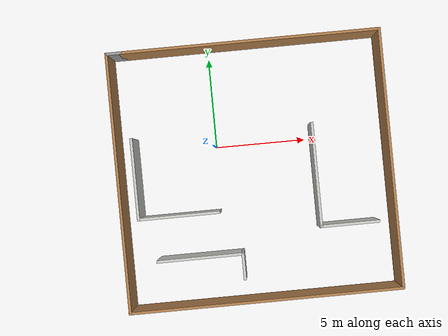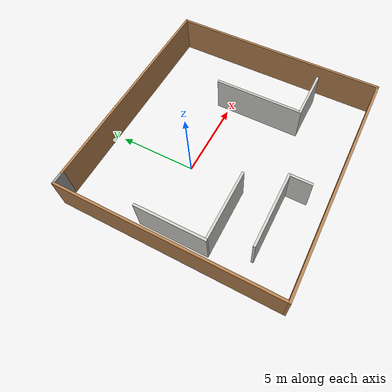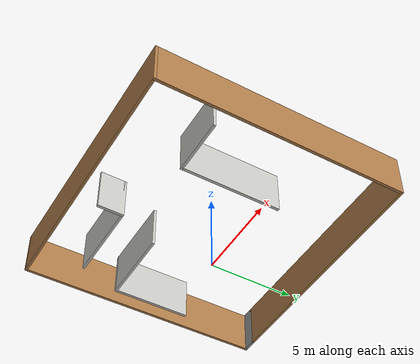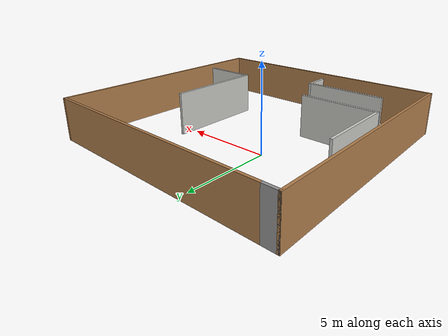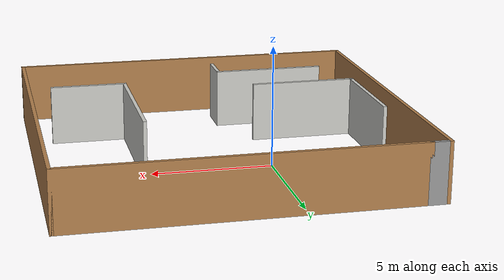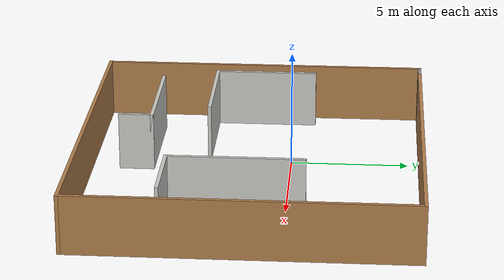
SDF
<?xml version='1.0'?>
<sdf version='1.7'>
  <model name='Maze_room'>
    <pose>2.02493 -1.51951 0 0 -0 0</pose>
    <link name='Wall_10'>
      <collision name='Wall_10_Collision'>
        <geometry>
          <box>
            <size>0.9 0.15 2.5</size>
          </box>
        </geometry>
        <pose>0 0 1.25 0 -0 0</pose>
      </collision>
      <visual name='Wall_10_Visual'>
        <pose>0 0 1.25 0 -0 0</pose>
        <geometry>
          <box>
            <size>0.9 0.15 2.5</size>
          </box>
        </geometry>
        <material>
          <script>
            <uri>file://media/materials/scripts/gazebo.material</uri>
            <name>Gazebo/Grey</name>
          </script>
          <ambient>1 1 1 1</ambient>
        </material>
        <meta>
          <layer>0</layer>
        </meta>
      </visual>
      <pose>-7.05 7.05 0 0 -0 0</pose>
    </link>
    <link name='Wall_12'>
      <collision name='Wall_12_Collision'>
        <geometry>
          <box>
            <size>4.5 0.15 2.5</size>
          </box>
        </geometry>
        <pose>0 0 1.25 0 -0 0</pose>
      </collision>
      <visual name='Wall_12_Visual'>
        <pose>0 0 1.25 0 -0 0</pose>
        <geometry>
          <box>
            <size>4.5 0.15 2.5</size>
          </box>
        </geometry>
        <material>
          <script>
            <uri>file://media/materials/scripts/gazebo.material</uri>
            <name>Gazebo/CeilingTiled</name>
          </script>
          <ambient>1 1 1 1</ambient>
        </material>
        <meta>
          <layer>0</layer>
        </meta>
      </visual>
      <pose>-6.51318 0.141698 0 0 -0 -1.5708</pose>
    </link>
    <link name='Wall_13'>
      <collision name='Wall_13_Collision'>
        <geometry>
          <box>
            <size>4.5 0.15 2.5</size>
          </box>
        </geometry>
        <pose>0 0 1.25 0 -0 0</pose>
      </collision>
      <visual name='Wall_13_Visual'>
        <pose>0 0 1.25 0 -0 0</pose>
        <geometry>
          <box>
            <size>4.5 0.15 2.5</size>
          </box>
        </geometry>
        <material>
          <script>
            <uri>file://media/materials/scripts/gazebo.material</uri>
            <name>Gazebo/CeilingTiled</name>
          </script>
          <ambient>1 1 1 1</ambient>
        </material>
        <meta>
          <layer>0</layer>
        </meta>
      </visual>
      <pose>-4.33818 -2.0333 0 0 -0 0</pose>
    </link>
    <link name='Wall_15'>
      <collision name='Wall_15_Collision'>
        <geometry>
          <box>
            <size>5.75 0.15 2.5</size>
          </box>
        </geometry>
        <pose>0 0 1.25 0 -0 0</pose>
      </collision>
      <visual name='Wall_15_Visual'>
        <pose>0 0 1.25 0 -0 0</pose>
        <geometry>
          <box>
            <size>5.75 0.15 2.5</size>
          </box>
        </geometry>
        <material>
          <script>
            <uri>file://media/materials/scripts/gazebo.material</uri>
            <name>Gazebo/CeilingTiled</name>
          </script>
          <ambient>1 1 1 1</ambient>
        </material>
        <meta>
          <layer>0</layer>
        </meta>
      </visual>
      <pose>3.31753 -0.523758 0 0 -0 -1.5708</pose>
    </link>
    <link name='Wall_16'>
      <collision name='Wall_16_Collision'>
        <geometry>
          <box>
            <size>3.25 0.15 2.5</size>
          </box>
        </geometry>
        <pose>0 0 1.25 0 -0 0</pose>
      </collision>
      <visual name='Wall_16_Visual'>
        <pose>0 0 1.25 0 -0 0</pose>
        <geometry>
          <box>
            <size>3.25 0.15 2.5</size>
          </box>
        </geometry>
        <material>
          <script>
            <uri>file://media/materials/scripts/gazebo.material</uri>
            <name>Gazebo/CeilingTiled</name>
          </script>
          <ambient>1 1 1 1</ambient>
        </material>
        <meta>
          <layer>0</layer>
        </meta>
      </visual>
      <pose>4.86753 -3.32376 0 0 -0 0</pose>
    </link>
    <link name='Wall_18'>
      <collision name='Wall_18_Collision'>
        <geometry>
          <box>
            <size>4.75 0.15 2.5</size>
          </box>
        </geometry>
        <pose>0 0 1.25 0 -0 0</pose>
      </collision>
      <visual name='Wall_18_Visual'>
        <pose>0 0 1.25 0 -0 0</pose>
        <geometry>
          <box>
            <size>4.75 0.15 2.5</size>
          </box>
        </geometry>
        <material>
          <script>
            <uri>file://media/materials/scripts/gazebo.material</uri>
            <name>Gazebo/CeilingTiled</name>
          </script>
          <ambient>1 1 1 1</ambient>
        </material>
        <meta>
          <layer>0</layer>
        </meta>
      </visual>
      <pose>-3.36361 -4.39893 0 0 -0 0</pose>
    </link>
    <link name='Wall_19'>
      <collision name='Wall_19_Collision'>
        <geometry>
          <box>
            <size>1.5 0.15 2.5</size>
          </box>
        </geometry>
        <pose>0 0 1.25 0 -0 0</pose>
      </collision>
      <visual name='Wall_19_Visual'>
        <pose>0 0 1.25 0 -0 0</pose>
        <geometry>
          <box>
            <size>1.5 0.15 2.5</size>
          </box>
        </geometry>
        <material>
          <script>
            <uri>file://media/materials/scripts/gazebo.material</uri>
            <name>Gazebo/CeilingTiled</name>
          </script>
          <ambient>1 1 1 1</ambient>
        </material>
        <meta>
          <layer>0</layer>
        </meta>
      </visual>
      <pose>-1.06361 -5.07393 0 0 -0 -1.5708</pose>
    </link>
    <link name='Wall_6'>
      <collision name='Wall_6_Collision'>
        <geometry>
          <box>
            <size>14.25 0.15 2.5</size>
          </box>
        </geometry>
        <pose>0 0 1.25 0 -0 0</pose>
      </collision>
      <visual name='Wall_6_Visual'>
        <pose>0 0 1.25 0 -0 0</pose>
        <geometry>
          <box>
            <size>14.25 0.15 2.5</size>
          </box>
        </geometry>
        <material>
          <script>
            <uri>file://media/materials/scripts/gazebo.material</uri>
            <name>Gazebo/Wood</name>
          </script>
          <ambient>1 1 1 1</ambient>
        </material>
        <meta>
          <layer>0</layer>
        </meta>
      </visual>
      <pose>0.375 7.05 0 0 -0 0</pose>
    </link>
    <link name='Wall_7'>
      <collision name='Wall_7_Collision'>
        <geometry>
          <box>
            <size>14.25 0.15 2.5</size>
          </box>
        </geometry>
        <pose>0 0 1.25 0 -0 0</pose>
      </collision>
      <visual name='Wall_7_Visual'>
        <pose>0 0 1.25 0 -0 0</pose>
        <geometry>
          <box>
            <size>14.25 0.15 2.5</size>
          </box>
        </geometry>
        <material>
          <script>
            <uri>file://media/materials/scripts/gazebo.material</uri>
            <name>Gazebo/Wood</name>
          </script>
          <ambient>1 1 1 1</ambient>
        </material>
        <meta>
          <layer>0</layer>
        </meta>
      </visual>
      <pose>7.425 0 0 0 -0 -1.5708</pose>
    </link>
    <link name='Wall_8'>
      <collision name='Wall_8_Collision'>
        <geometry>
          <box>
            <size>15 0.15 2.5</size>
          </box>
        </geometry>
        <pose>0 0 1.25 0 -0 0</pose>
      </collision>
      <visual name='Wall_8_Visual'>
        <pose>0 0 1.25 0 -0 0</pose>
        <geometry>
          <box>
            <size>15 0.15 2.5</size>
          </box>
        </geometry>
        <material>
          <script>
            <uri>file://media/materials/scripts/gazebo.material</uri>
            <name>Gazebo/Wood</name>
          </script>
          <ambient>1 1 1 1</ambient>
        </material>
        <meta>
          <layer>0</layer>
        </meta>
      </visual>
      <pose>0 -7.05 0 0 -0 3.14159</pose>
    </link>
    <link name='Wall_9'>
      <collision name='Wall_9_Collision'>
        <geometry>
          <box>
            <size>14.25 0.15 2.5</size>
          </box>
        </geometry>
        <pose>0 0 1.25 0 -0 0</pose>
      </collision>
      <visual name='Wall_9_Visual'>
        <pose>0 0 1.25 0 -0 0</pose>
        <geometry>
          <box>
            <size>14.25 0.15 2.5</size>
          </box>
        </geometry>
        <material>
          <script>
            <uri>file://media/materials/scripts/gazebo.material</uri>
            <name>Gazebo/Wood</name>
          </script>
          <ambient>1 1 1 1</ambient>
        </material>
        <meta>
          <layer>0</layer>
        </meta>
      </visual>
      <pose>-7.425 0 0 0 -0 1.5708</pose>
    </link>
    <static>1</static>
  </model>
</sdf>
